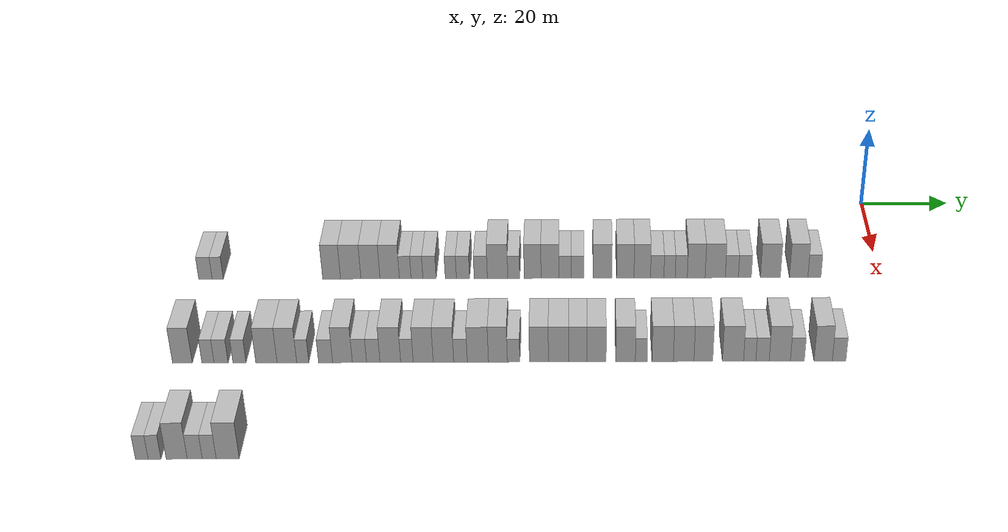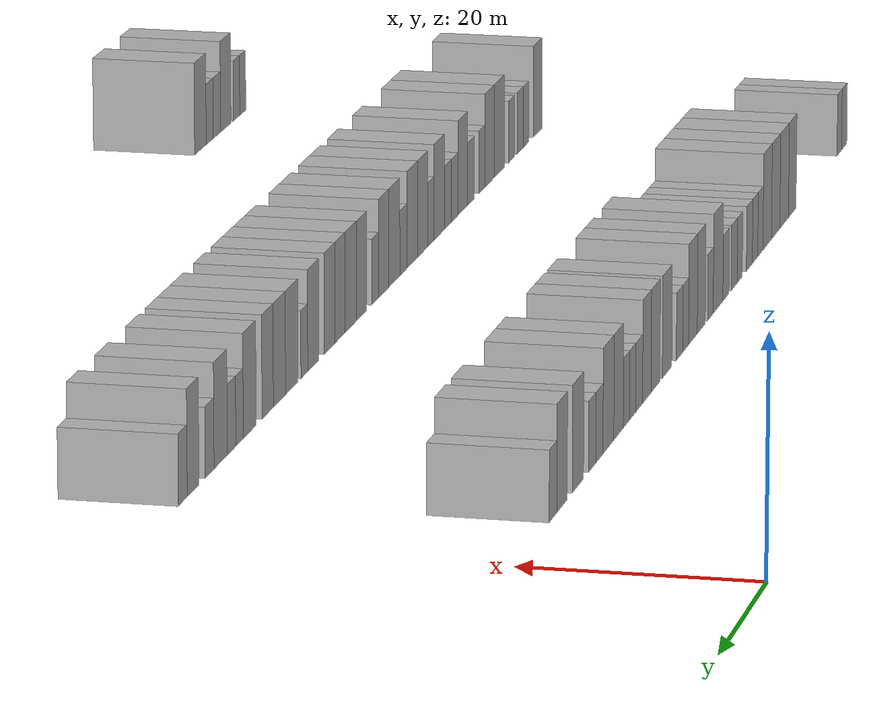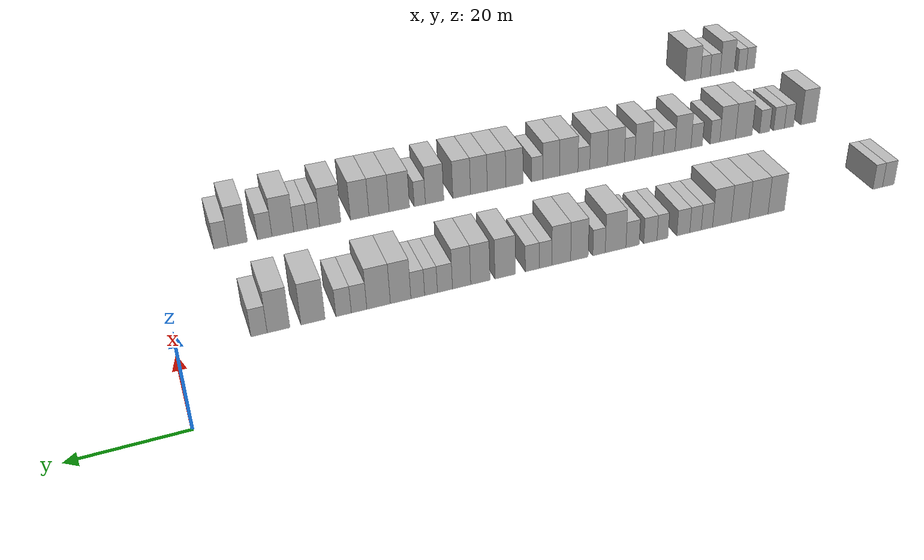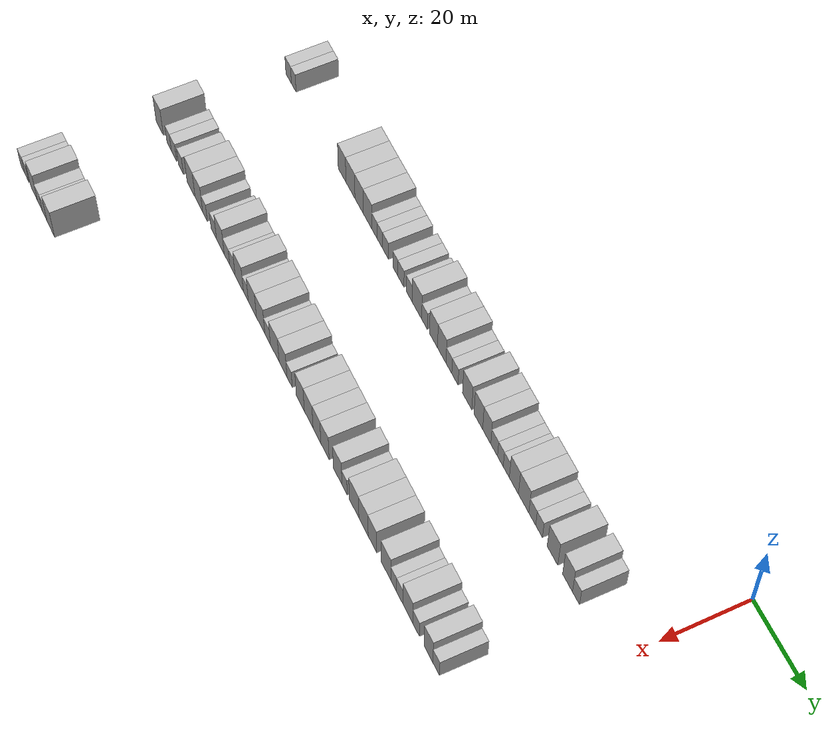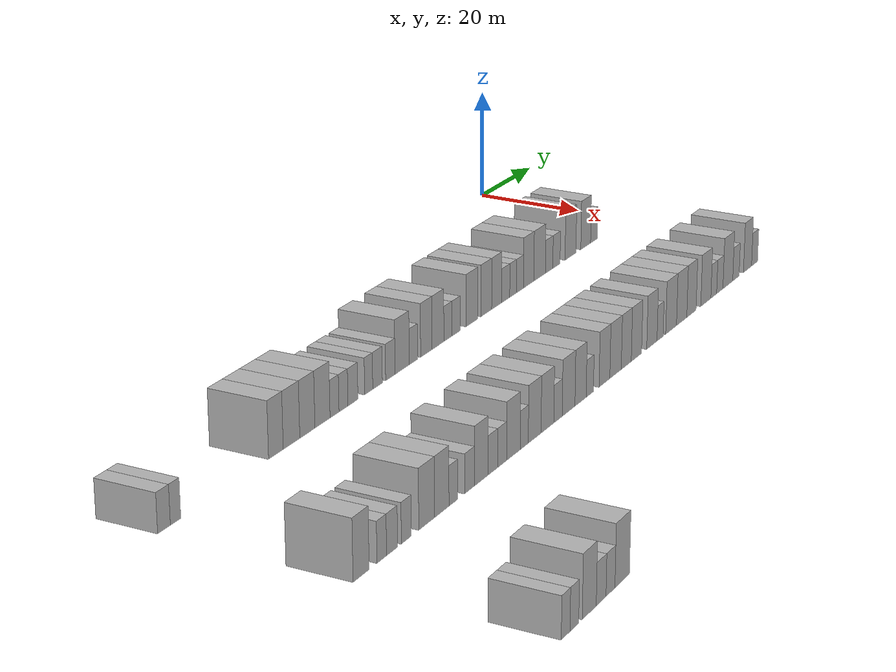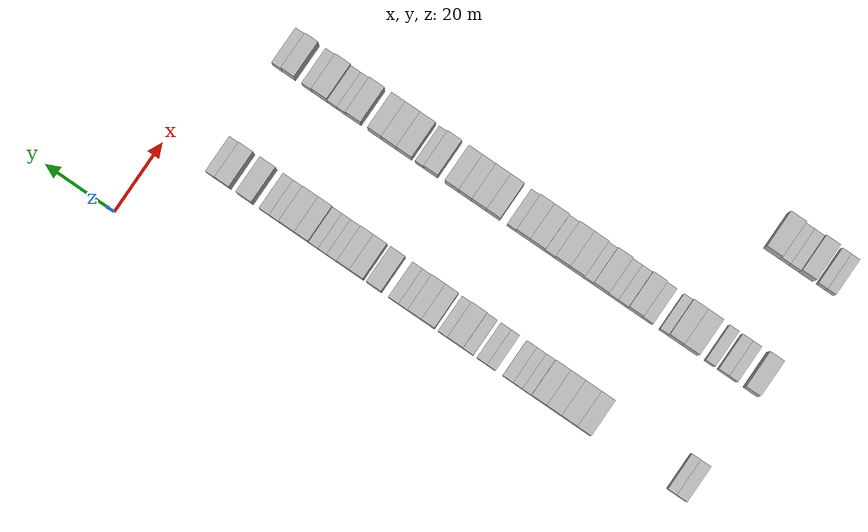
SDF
<sdf version="1.6">
 <world name="default">
  <model name="building_72">
   <static>1</static>
   <pose>25.0000 -148.7566 0 0.000000 0.000000 0.000000</pose>
   <link name="link">
    <pose>0 0 3.00 0 0 0</pose>
    <collision name="collision"><geometry><box><size>10.0000 2.9561 6.0000</size></box></geometry></collision>
    <visual name="visual">
     <cast_shadows>0</cast_shadows>
     <geometry><box><size>10.0000 2.9561 6.0000</size></box></geometry>
     <material>
      <script>
       <uri>model://HANNAS_wall/materials/scripts</uri>
       <uri>model://HANNAS_wall/materials/textures</uri>
       <name>vrc/HANNAS_wall</name>
      </script>
     </material>
    </visual>
   </link>
  </model>
  <model name="building_73">
   <static>1</static>
   <pose>25.0000 -146.0488 0 0.000000 0.000000 0.000000</pose>
   <link name="link">
    <pose>0 0 3.00 0 0 0</pose>
    <collision name="collision"><geometry><box><size>10.0000 2.4596 6.0000</size></box></geometry></collision>
    <visual name="visual">
     <cast_shadows>0</cast_shadows>
     <geometry><box><size>10.0000 2.4596 6.0000</size></box></geometry>
     <material>
      <script>
       <uri>model://HANNAS_wall/materials/scripts</uri>
       <uri>model://HANNAS_wall/materials/textures</uri>
       <name>vrc/HANNAS_wall</name>
      </script>
     </material>
    </visual>
   </link>
  </model>
  <model name="building_74">
   <static>1</static>
   <pose>25.0000 -120.9493 0 0.000000 0.000000 0.000000</pose>
   <link name="link">
    <pose>0 0 4.50 0 0 0</pose>
    <collision name="collision"><geometry><box><size>10.0000 3.9131 9.0000</size></box></geometry></collision>
    <visual name="visual">
     <cast_shadows>0</cast_shadows>
     <geometry><box><size>10.0000 3.9131 9.0000</size></box></geometry>
     <material>
      <script>
       <uri>model://HANNAS_wall/materials/scripts</uri>
       <uri>model://HANNAS_wall/materials/textures</uri>
       <name>vrc/HANNAS_wall</name>
      </script>
     </material>
    </visual>
   </link>
  </model>
  <model name="building_75">
   <static>1</static>
   <pose>25.0000 -116.7447 0 0.000000 0.000000 0.000000</pose>
   <link name="link">
    <pose>0 0 4.50 0 0 0</pose>
    <collision name="collision"><geometry><box><size>10.0000 4.4961 9.0000</size></box></geometry></collision>
    <visual name="visual">
     <cast_shadows>0</cast_shadows>
     <geometry><box><size>10.0000 4.4961 9.0000</size></box></geometry>
     <material>
      <script>
       <uri>model://HANNAS_wall/materials/scripts</uri>
       <uri>model://HANNAS_wall/materials/textures</uri>
       <name>vrc/HANNAS_wall</name>
      </script>
     </material>
    </visual>
   </link>
  </model>
  <model name="building_76">
   <static>1</static>
   <pose>25.0000 -112.3964 0 0.000000 0.000000 0.000000</pose>
   <link name="link">
    <pose>0 0 4.50 0 0 0</pose>
    <collision name="collision"><geometry><box><size>10.0000 4.2004 9.0000</size></box></geometry></collision>
    <visual name="visual">
     <cast_shadows>0</cast_shadows>
     <geometry><box><size>10.0000 4.2004 9.0000</size></box></geometry>
     <material>
      <script>
       <uri>model://HANNAS_wall/materials/scripts</uri>
       <uri>model://HANNAS_wall/materials/textures</uri>
       <name>vrc/HANNAS_wall</name>
      </script>
     </material>
    </visual>
   </link>
  </model>
  <model name="building_77">
   <static>1</static>
   <pose>25.0000 -108.1592 0 0.000000 0.000000 0.000000</pose>
   <link name="link">
    <pose>0 0 4.50 0 0 0</pose>
    <collision name="collision"><geometry><box><size>10.0000 4.2739 9.0000</size></box></geometry></collision>
    <visual name="visual">
     <cast_shadows>0</cast_shadows>
     <geometry><box><size>10.0000 4.2739 9.0000</size></box></geometry>
     <material>
      <script>
       <uri>model://HANNAS_wall/materials/scripts</uri>
       <uri>model://HANNAS_wall/materials/textures</uri>
       <name>vrc/HANNAS_wall</name>
      </script>
     </material>
    </visual>
   </link>
  </model>
  <model name="building_78">
   <static>1</static>
   <pose>25.0000 -104.7323 0 0.000000 0.000000 0.000000</pose>
   <link name="link">
    <pose>0 0 3.00 0 0 0</pose>
    <collision name="collision"><geometry><box><size>10.0000 2.5799 6.0000</size></box></geometry></collision>
    <visual name="visual">
     <cast_shadows>0</cast_shadows>
     <geometry><box><size>10.0000 2.5799 6.0000</size></box></geometry>
     <material>
      <script>
       <uri>model://HANNAS_wall/materials/scripts</uri>
       <uri>model://HANNAS_wall/materials/textures</uri>
       <name>vrc/HANNAS_wall</name>
      </script>
     </material>
    </visual>
   </link>
  </model>
  <model name="building_79">
   <static>1</static>
   <pose>25.0000 -102.1367 0 0.000000 0.000000 0.000000</pose>
   <link name="link">
    <pose>0 0 3.00 0 0 0</pose>
    <collision name="collision"><geometry><box><size>10.0000 2.6113 6.0000</size></box></geometry></collision>
    <visual name="visual">
     <cast_shadows>0</cast_shadows>
     <geometry><box><size>10.0000 2.6113 6.0000</size></box></geometry>
     <material>
      <script>
       <uri>model://HANNAS_wall/materials/scripts</uri>
       <uri>model://HANNAS_wall/materials/textures</uri>
       <name>vrc/HANNAS_wall</name>
      </script>
     </material>
    </visual>
   </link>
  </model>
  <model name="building_80">
   <static>1</static>
   <pose>25.0000 -99.3626 0 0.000000 0.000000 0.000000</pose>
   <link name="link">
    <pose>0 0 3.00 0 0 0</pose>
    <collision name="collision"><geometry><box><size>10.0000 2.9368 6.0000</size></box></geometry></collision>
    <visual name="visual">
     <cast_shadows>0</cast_shadows>
     <geometry><box><size>10.0000 2.9368 6.0000</size></box></geometry>
     <material>
      <script>
       <uri>model://HANNAS_wall/materials/scripts</uri>
       <uri>model://HANNAS_wall/materials/textures</uri>
       <name>vrc/HANNAS_wall</name>
      </script>
     </material>
    </visual>
   </link>
  </model>
  <model name="building_81">
   <static>1</static>
   <pose>25.0000 -94.6724 0 0.000000 0.000000 0.000000</pose>
   <link name="link">
    <pose>0 0 3.00 0 0 0</pose>
    <collision name="collision"><geometry><box><size>10.0000 2.4437 6.0000</size></box></geometry></collision>
    <visual name="visual">
     <cast_shadows>0</cast_shadows>
     <geometry><box><size>10.0000 2.4437 6.0000</size></box></geometry>
     <material>
      <script>
       <uri>model://HANNAS_wall/materials/scripts</uri>
       <uri>model://HANNAS_wall/materials/textures</uri>
       <name>vrc/HANNAS_wall</name>
      </script>
     </material>
    </visual>
   </link>
  </model>
  <model name="building_82">
   <static>1</static>
   <pose>25.0000 -91.9848 0 0.000000 0.000000 0.000000</pose>
   <link name="link">
    <pose>0 0 3.00 0 0 0</pose>
    <collision name="collision"><geometry><box><size>10.0000 2.9315 6.0000</size></box></geometry></collision>
    <visual name="visual">
     <cast_shadows>0</cast_shadows>
     <geometry><box><size>10.0000 2.9315 6.0000</size></box></geometry>
     <material>
      <script>
       <uri>model://HANNAS_wall/materials/scripts</uri>
       <uri>model://HANNAS_wall/materials/textures</uri>
       <name>vrc/HANNAS_wall</name>
      </script>
     </material>
    </visual>
   </link>
  </model>
  <model name="building_83">
   <static>1</static>
   <pose>25.0000 -88.0615 0 0.000000 0.000000 0.000000</pose>
   <link name="link">
    <pose>0 0 3.00 0 0 0</pose>
    <collision name="collision"><geometry><box><size>10.0000 2.9152 6.0000</size></box></geometry></collision>
    <visual name="visual">
     <cast_shadows>0</cast_shadows>
     <geometry><box><size>10.0000 2.9152 6.0000</size></box></geometry>
     <material>
      <script>
       <uri>model://HANNAS_wall/materials/scripts</uri>
       <uri>model://HANNAS_wall/materials/textures</uri>
       <name>vrc/HANNAS_wall</name>
      </script>
     </material>
    </visual>
   </link>
  </model>
  <model name="building_84">
   <static>1</static>
   <pose>25.0000 -84.3552 0 0.000000 0.000000 0.000000</pose>
   <link name="link">
    <pose>0 0 4.50 0 0 0</pose>
    <collision name="collision"><geometry><box><size>10.0000 4.4973 9.0000</size></box></geometry></collision>
    <visual name="visual">
     <cast_shadows>0</cast_shadows>
     <geometry><box><size>10.0000 4.4973 9.0000</size></box></geometry>
     <material>
      <script>
       <uri>model://HANNAS_wall/materials/scripts</uri>
       <uri>model://HANNAS_wall/materials/textures</uri>
       <name>vrc/HANNAS_wall</name>
      </script>
     </material>
    </visual>
   </link>
  </model>
  <model name="building_85">
   <static>1</static>
   <pose>25.0000 -80.7821 0 0.000000 0.000000 0.000000</pose>
   <link name="link">
    <pose>0 0 3.00 0 0 0</pose>
    <collision name="collision"><geometry><box><size>10.0000 2.6490 6.0000</size></box></geometry></collision>
    <visual name="visual">
     <cast_shadows>0</cast_shadows>
     <geometry><box><size>10.0000 2.6490 6.0000</size></box></geometry>
     <material>
      <script>
       <uri>model://HANNAS_wall/materials/scripts</uri>
       <uri>model://HANNAS_wall/materials/textures</uri>
       <name>vrc/HANNAS_wall</name>
      </script>
     </material>
    </visual>
   </link>
  </model>
  <model name="building_86">
   <static>1</static>
   <pose>25.0000 -76.5953 0 0.000000 0.000000 0.000000</pose>
   <link name="link">
    <pose>0 0 4.50 0 0 0</pose>
    <collision name="collision"><geometry><box><size>10.0000 3.7245 9.0000</size></box></geometry></collision>
    <visual name="visual">
     <cast_shadows>0</cast_shadows>
     <geometry><box><size>10.0000 3.7245 9.0000</size></box></geometry>
     <material>
      <script>
       <uri>model://HANNAS_wall/materials/scripts</uri>
       <uri>model://HANNAS_wall/materials/textures</uri>
       <name>vrc/HANNAS_wall</name>
      </script>
     </material>
    </visual>
   </link>
  </model>
  <model name="building_87">
   <static>1</static>
   <pose>25.0000 -72.7636 0 0.000000 0.000000 0.000000</pose>
   <link name="link">
    <pose>0 0 4.50 0 0 0</pose>
    <collision name="collision"><geometry><box><size>10.0000 3.9390 9.0000</size></box></geometry></collision>
    <visual name="visual">
     <cast_shadows>0</cast_shadows>
     <geometry><box><size>10.0000 3.9390 9.0000</size></box></geometry>
     <material>
      <script>
       <uri>model://HANNAS_wall/materials/scripts</uri>
       <uri>model://HANNAS_wall/materials/textures</uri>
       <name>vrc/HANNAS_wall</name>
      </script>
     </material>
    </visual>
   </link>
  </model>
  <model name="building_88">
   <static>1</static>
   <pose>25.0000 -69.4672 0 0.000000 0.000000 0.000000</pose>
   <link name="link">
    <pose>0 0 3.00 0 0 0</pose>
    <collision name="collision"><geometry><box><size>10.0000 2.6539 6.0000</size></box></geometry></collision>
    <visual name="visual">
     <cast_shadows>0</cast_shadows>
     <geometry><box><size>10.0000 2.6539 6.0000</size></box></geometry>
     <material>
      <script>
       <uri>model://HANNAS_wall/materials/scripts</uri>
       <uri>model://HANNAS_wall/materials/textures</uri>
       <name>vrc/HANNAS_wall</name>
      </script>
     </material>
    </visual>
   </link>
  </model>
  <model name="building_89">
   <static>1</static>
   <pose>25.0000 -66.7081 0 0.000000 0.000000 0.000000</pose>
   <link name="link">
    <pose>0 0 3.00 0 0 0</pose>
    <collision name="collision"><geometry><box><size>10.0000 2.8642 6.0000</size></box></geometry></collision>
    <visual name="visual">
     <cast_shadows>0</cast_shadows>
     <geometry><box><size>10.0000 2.8642 6.0000</size></box></geometry>
     <material>
      <script>
       <uri>model://HANNAS_wall/materials/scripts</uri>
       <uri>model://HANNAS_wall/materials/textures</uri>
       <name>vrc/HANNAS_wall</name>
      </script>
     </material>
    </visual>
   </link>
  </model>
  <model name="building_90">
   <static>1</static>
   <pose>25.0000 -61.1816 0 0.000000 0.000000 0.000000</pose>
   <link name="link">
    <pose>0 0 4.50 0 0 0</pose>
    <collision name="collision"><geometry><box><size>10.0000 4.1888 9.0000</size></box></geometry></collision>
    <visual name="visual">
     <cast_shadows>0</cast_shadows>
     <geometry><box><size>10.0000 4.1888 9.0000</size></box></geometry>
     <material>
      <script>
       <uri>model://HANNAS_wall/materials/scripts</uri>
       <uri>model://HANNAS_wall/materials/textures</uri>
       <name>vrc/HANNAS_wall</name>
      </script>
     </material>
    </visual>
   </link>
  </model>
  <model name="building_91">
   <static>1</static>
   <pose>25.0000 -56.1573 0 0.000000 0.000000 0.000000</pose>
   <link name="link">
    <pose>0 0 4.50 0 0 0</pose>
    <collision name="collision"><geometry><box><size>10.0000 3.8599 9.0000</size></box></geometry></collision>
    <visual name="visual">
     <cast_shadows>0</cast_shadows>
     <geometry><box><size>10.0000 3.8599 9.0000</size></box></geometry>
     <material>
      <script>
       <uri>model://HANNAS_wall/materials/scripts</uri>
       <uri>model://HANNAS_wall/materials/textures</uri>
       <name>vrc/HANNAS_wall</name>
      </script>
     </material>
    </visual>
   </link>
  </model>
  <model name="building_92">
   <static>1</static>
   <pose>25.0000 -52.4123 0 0.000000 0.000000 0.000000</pose>
   <link name="link">
    <pose>0 0 4.50 0 0 0</pose>
    <collision name="collision"><geometry><box><size>10.0000 3.6300 9.0000</size></box></geometry></collision>
    <visual name="visual">
     <cast_shadows>0</cast_shadows>
     <geometry><box><size>10.0000 3.6300 9.0000</size></box></geometry>
     <material>
      <script>
       <uri>model://HANNAS_wall/materials/scripts</uri>
       <uri>model://HANNAS_wall/materials/textures</uri>
       <name>vrc/HANNAS_wall</name>
      </script>
     </material>
    </visual>
   </link>
  </model>
  <model name="building_93">
   <static>1</static>
   <pose>25.0000 -49.1199 0 0.000000 0.000000 0.000000</pose>
   <link name="link">
    <pose>0 0 3.00 0 0 0</pose>
    <collision name="collision"><geometry><box><size>10.0000 2.9548 6.0000</size></box></geometry></collision>
    <visual name="visual">
     <cast_shadows>0</cast_shadows>
     <geometry><box><size>10.0000 2.9548 6.0000</size></box></geometry>
     <material>
      <script>
       <uri>model://HANNAS_wall/materials/scripts</uri>
       <uri>model://HANNAS_wall/materials/textures</uri>
       <name>vrc/HANNAS_wall</name>
      </script>
     </material>
    </visual>
   </link>
  </model>
  <model name="building_94">
   <static>1</static>
   <pose>25.0000 -46.3922 0 0.000000 0.000000 0.000000</pose>
   <link name="link">
    <pose>0 0 3.00 0 0 0</pose>
    <collision name="collision"><geometry><box><size>10.0000 2.5007 6.0000</size></box></geometry></collision>
    <visual name="visual">
     <cast_shadows>0</cast_shadows>
     <geometry><box><size>10.0000 2.5007 6.0000</size></box></geometry>
     <material>
      <script>
       <uri>model://HANNAS_wall/materials/scripts</uri>
       <uri>model://HANNAS_wall/materials/textures</uri>
       <name>vrc/HANNAS_wall</name>
      </script>
     </material>
    </visual>
   </link>
  </model>
  <model name="building_95">
   <static>1</static>
   <pose>25.0000 -43.8099 0 0.000000 0.000000 0.000000</pose>
   <link name="link">
    <pose>0 0 3.00 0 0 0</pose>
    <collision name="collision"><geometry><box><size>10.0000 2.6638 6.0000</size></box></geometry></collision>
    <visual name="visual">
     <cast_shadows>0</cast_shadows>
     <geometry><box><size>10.0000 2.6638 6.0000</size></box></geometry>
     <material>
      <script>
       <uri>model://HANNAS_wall/materials/scripts</uri>
       <uri>model://HANNAS_wall/materials/textures</uri>
       <name>vrc/HANNAS_wall</name>
      </script>
     </material>
    </visual>
   </link>
  </model>
  <model name="building_96">
   <static>1</static>
   <pose>25.0000 -40.5106 0 0.000000 0.000000 0.000000</pose>
   <link name="link">
    <pose>0 0 4.50 0 0 0</pose>
    <collision name="collision"><geometry><box><size>10.0000 3.9348 9.0000</size></box></geometry></collision>
    <visual name="visual">
     <cast_shadows>0</cast_shadows>
     <geometry><box><size>10.0000 3.9348 9.0000</size></box></geometry>
     <material>
      <script>
       <uri>model://HANNAS_wall/materials/scripts</uri>
       <uri>model://HANNAS_wall/materials/textures</uri>
       <name>vrc/HANNAS_wall</name>
      </script>
     </material>
    </visual>
   </link>
  </model>
  <model name="building_97">
   <static>1</static>
   <pose>25.0000 -36.3132 0 0.000000 0.000000 0.000000</pose>
   <link name="link">
    <pose>0 0 4.50 0 0 0</pose>
    <collision name="collision"><geometry><box><size>10.0000 4.4601 9.0000</size></box></geometry></collision>
    <visual name="visual">
     <cast_shadows>0</cast_shadows>
     <geometry><box><size>10.0000 4.4601 9.0000</size></box></geometry>
     <material>
      <script>
       <uri>model://HANNAS_wall/materials/scripts</uri>
       <uri>model://HANNAS_wall/materials/textures</uri>
       <name>vrc/HANNAS_wall</name>
      </script>
     </material>
    </visual>
   </link>
  </model>
  <model name="building_98">
   <static>1</static>
   <pose>25.0000 -32.6326 0 0.000000 0.000000 0.000000</pose>
   <link name="link">
    <pose>0 0 3.00 0 0 0</pose>
    <collision name="collision"><geometry><box><size>10.0000 2.9010 6.0000</size></box></geometry></collision>
    <visual name="visual">
     <cast_shadows>0</cast_shadows>
     <geometry><box><size>10.0000 2.9010 6.0000</size></box></geometry>
     <material>
      <script>
       <uri>model://HANNAS_wall/materials/scripts</uri>
       <uri>model://HANNAS_wall/materials/textures</uri>
       <name>vrc/HANNAS_wall</name>
      </script>
     </material>
    </visual>
   </link>
  </model>
  <model name="building_99">
   <static>1</static>
   <pose>25.0000 -29.7477 0 0.000000 0.000000 0.000000</pose>
   <link name="link">
    <pose>0 0 3.00 0 0 0</pose>
    <collision name="collision"><geometry><box><size>10.0000 2.8688 6.0000</size></box></geometry></collision>
    <visual name="visual">
     <cast_shadows>0</cast_shadows>
     <geometry><box><size>10.0000 2.8688 6.0000</size></box></geometry>
     <material>
      <script>
       <uri>model://HANNAS_wall/materials/scripts</uri>
       <uri>model://HANNAS_wall/materials/textures</uri>
       <name>vrc/HANNAS_wall</name>
      </script>
     </material>
    </visual>
   </link>
  </model>
  <model name="building_100">
   <static>1</static>
   <pose>25.0000 -24.1033 0 0.000000 0.000000 0.000000</pose>
   <link name="link">
    <pose>0 0 4.50 0 0 0</pose>
    <collision name="collision"><geometry><box><size>10.0000 4.4200 9.0000</size></box></geometry></collision>
    <visual name="visual">
     <cast_shadows>0</cast_shadows>
     <geometry><box><size>10.0000 4.4200 9.0000</size></box></geometry>
     <material>
      <script>
       <uri>model://HANNAS_wall/materials/scripts</uri>
       <uri>model://HANNAS_wall/materials/textures</uri>
       <name>vrc/HANNAS_wall</name>
      </script>
     </material>
    </visual>
   </link>
  </model>
  <model name="building_101">
   <static>1</static>
   <pose>25.0000 -17.8589 0 0.000000 0.000000 0.000000</pose>
   <link name="link">
    <pose>0 0 4.50 0 0 0</pose>
    <collision name="collision"><geometry><box><size>10.0000 4.0689 9.0000</size></box></geometry></collision>
    <visual name="visual">
     <cast_shadows>0</cast_shadows>
     <geometry><box><size>10.0000 4.0689 9.0000</size></box></geometry>
     <material>
      <script>
       <uri>model://HANNAS_wall/materials/scripts</uri>
       <uri>model://HANNAS_wall/materials/textures</uri>
       <name>vrc/HANNAS_wall</name>
      </script>
     </material>
    </visual>
   </link>
  </model>
  <model name="building_102">
   <static>1</static>
   <pose>25.0000 -14.3806 0 0.000000 0.000000 0.000000</pose>
   <link name="link">
    <pose>0 0 3.00 0 0 0</pose>
    <collision name="collision"><geometry><box><size>10.0000 2.8877 6.0000</size></box></geometry></collision>
    <visual name="visual">
     <cast_shadows>0</cast_shadows>
     <geometry><box><size>10.0000 2.8877 6.0000</size></box></geometry>
     <material>
      <script>
       <uri>model://HANNAS_wall/materials/scripts</uri>
       <uri>model://HANNAS_wall/materials/textures</uri>
       <name>vrc/HANNAS_wall</name>
      </script>
     </material>
    </visual>
   </link>
  </model>
  <model name="building_306">
   <static>1</static>
   <pose>55.0000 -148.2783 0 0.000000 0.000000 0.000000</pose>
   <link name="link">
    <pose>0 0 4.50 0 0 0</pose>
    <collision name="collision"><geometry><box><size>10.0000 4.0579 9.0000</size></box></geometry></collision>
    <visual name="visual">
     <cast_shadows>0</cast_shadows>
     <geometry><box><size>10.0000 4.0579 9.0000</size></box></geometry>
     <material>
      <script>
       <uri>model://HANNAS_wall/materials/scripts</uri>
       <uri>model://HANNAS_wall/materials/textures</uri>
       <name>vrc/HANNAS_wall</name>
      </script>
     </material>
    </visual>
   </link>
  </model>
  <model name="building_307">
   <static>1</static>
   <pose>55.0000 -143.0021 0 0.000000 0.000000 0.000000</pose>
   <link name="link">
    <pose>0 0 3.00 0 0 0</pose>
    <collision name="collision"><geometry><box><size>10.0000 2.4945 6.0000</size></box></geometry></collision>
    <visual name="visual">
     <cast_shadows>0</cast_shadows>
     <geometry><box><size>10.0000 2.4945 6.0000</size></box></geometry>
     <material>
      <script>
       <uri>model://HANNAS_wall/materials/scripts</uri>
       <uri>model://HANNAS_wall/materials/textures</uri>
       <name>vrc/HANNAS_wall</name>
      </script>
     </material>
    </visual>
   </link>
  </model>
  <model name="building_308">
   <static>1</static>
   <pose>55.0000 -140.3025 0 0.000000 0.000000 0.000000</pose>
   <link name="link">
    <pose>0 0 3.00 0 0 0</pose>
    <collision name="collision"><geometry><box><size>10.0000 2.9047 6.0000</size></box></geometry></collision>
    <visual name="visual">
     <cast_shadows>0</cast_shadows>
     <geometry><box><size>10.0000 2.9047 6.0000</size></box></geometry>
     <material>
      <script>
       <uri>model://HANNAS_wall/materials/scripts</uri>
       <uri>model://HANNAS_wall/materials/textures</uri>
       <name>vrc/HANNAS_wall</name>
      </script>
     </material>
    </visual>
   </link>
  </model>
  <model name="building_309">
   <static>1</static>
   <pose>55.0000 -136.4966 0 0.000000 0.000000 0.000000</pose>
   <link name="link">
    <pose>0 0 3.00 0 0 0</pose>
    <collision name="collision"><geometry><box><size>10.0000 2.7070 6.0000</size></box></geometry></collision>
    <visual name="visual">
     <cast_shadows>0</cast_shadows>
     <geometry><box><size>10.0000 2.7070 6.0000</size></box></geometry>
     <material>
      <script>
       <uri>model://HANNAS_wall/materials/scripts</uri>
       <uri>model://HANNAS_wall/materials/textures</uri>
       <name>vrc/HANNAS_wall</name>
      </script>
     </material>
    </visual>
   </link>
  </model>
  <model name="building_310">
   <static>1</static>
   <pose>55.0000 -130.9513 0 0.000000 0.000000 0.000000</pose>
   <link name="link">
    <pose>0 0 4.50 0 0 0</pose>
    <collision name="collision"><geometry><box><size>10.0000 4.3837 9.0000</size></box></geometry></collision>
    <visual name="visual">
     <cast_shadows>0</cast_shadows>
     <geometry><box><size>10.0000 4.3837 9.0000</size></box></geometry>
     <material>
      <script>
       <uri>model://HANNAS_wall/materials/scripts</uri>
       <uri>model://HANNAS_wall/materials/textures</uri>
       <name>vrc/HANNAS_wall</name>
      </script>
     </material>
    </visual>
   </link>
  </model>
  <model name="building_311">
   <static>1</static>
   <pose>55.0000 -126.7279 0 0.000000 0.000000 0.000000</pose>
   <link name="link">
    <pose>0 0 4.50 0 0 0</pose>
    <collision name="collision"><geometry><box><size>10.0000 4.0631 9.0000</size></box></geometry></collision>
    <visual name="visual">
     <cast_shadows>0</cast_shadows>
     <geometry><box><size>10.0000 4.0631 9.0000</size></box></geometry>
     <material>
      <script>
       <uri>model://HANNAS_wall/materials/scripts</uri>
       <uri>model://HANNAS_wall/materials/textures</uri>
       <name>vrc/HANNAS_wall</name>
      </script>
     </material>
    </visual>
   </link>
  </model>
  <model name="building_312">
   <static>1</static>
   <pose>55.0000 -123.4439 0 0.000000 0.000000 0.000000</pose>
   <link name="link">
    <pose>0 0 3.00 0 0 0</pose>
    <collision name="collision"><geometry><box><size>10.0000 2.5049 6.0000</size></box></geometry></collision>
    <visual name="visual">
     <cast_shadows>0</cast_shadows>
     <geometry><box><size>10.0000 2.5049 6.0000</size></box></geometry>
     <material>
      <script>
       <uri>model://HANNAS_wall/materials/scripts</uri>
       <uri>model://HANNAS_wall/materials/textures</uri>
       <name>vrc/HANNAS_wall</name>
      </script>
     </material>
    </visual>
   </link>
  </model>
  <model name="building_313">
   <static>1</static>
   <pose>55.0000 -118.7361 0 0.000000 0.000000 0.000000</pose>
   <link name="link">
    <pose>0 0 3.00 0 0 0</pose>
    <collision name="collision"><geometry><box><size>10.0000 2.9108 6.0000</size></box></geometry></collision>
    <visual name="visual">
     <cast_shadows>0</cast_shadows>
     <geometry><box><size>10.0000 2.9108 6.0000</size></box></geometry>
     <material>
      <script>
       <uri>model://HANNAS_wall/materials/scripts</uri>
       <uri>model://HANNAS_wall/materials/textures</uri>
       <name>vrc/HANNAS_wall</name>
      </script>
     </material>
    </visual>
   </link>
  </model>
  <model name="building_314">
   <static>1</static>
   <pose>55.0000 -115.2492 0 0.000000 0.000000 0.000000</pose>
   <link name="link">
    <pose>0 0 4.50 0 0 0</pose>
    <collision name="collision"><geometry><box><size>10.0000 4.0630 9.0000</size></box></geometry></collision>
    <visual name="visual">
     <cast_shadows>0</cast_shadows>
     <geometry><box><size>10.0000 4.0630 9.0000</size></box></geometry>
     <material>
      <script>
       <uri>model://HANNAS_wall/materials/scripts</uri>
       <uri>model://HANNAS_wall/materials/textures</uri>
       <name>vrc/HANNAS_wall</name>
      </script>
     </material>
    </visual>
   </link>
  </model>
  <model name="building_315">
   <static>1</static>
   <pose>55.0000 -111.7540 0 0.000000 0.000000 0.000000</pose>
   <link name="link">
    <pose>0 0 3.00 0 0 0</pose>
    <collision name="collision"><geometry><box><size>10.0000 2.9272 6.0000</size></box></geometry></collision>
    <visual name="visual">
     <cast_shadows>0</cast_shadows>
     <geometry><box><size>10.0000 2.9272 6.0000</size></box></geometry>
     <material>
      <script>
       <uri>model://HANNAS_wall/materials/scripts</uri>
       <uri>model://HANNAS_wall/materials/textures</uri>
       <name>vrc/HANNAS_wall</name>
      </script>
     </material>
    </visual>
   </link>
  </model>
  <model name="building_316">
   <static>1</static>
   <pose>55.0000 -108.9055 0 0.000000 0.000000 0.000000</pose>
   <link name="link">
    <pose>0 0 3.00 0 0 0</pose>
    <collision name="collision"><geometry><box><size>10.0000 2.7699 6.0000</size></box></geometry></collision>
    <visual name="visual">
     <cast_shadows>0</cast_shadows>
     <geometry><box><size>10.0000 2.7699 6.0000</size></box></geometry>
     <material>
      <script>
       <uri>model://HANNAS_wall/materials/scripts</uri>
       <uri>model://HANNAS_wall/materials/textures</uri>
       <name>vrc/HANNAS_wall</name>
      </script>
     </material>
    </visual>
   </link>
  </model>
  <model name="building_317">
   <static>1</static>
   <pose>55.0000 -105.3788 0 0.000000 0.000000 0.000000</pose>
   <link name="link">
    <pose>0 0 4.50 0 0 0</pose>
    <collision name="collision"><geometry><box><size>10.0000 4.2834 9.0000</size></box></geometry></collision>
    <visual name="visual">
     <cast_shadows>0</cast_shadows>
     <geometry><box><size>10.0000 4.2834 9.0000</size></box></geometry>
     <material>
      <script>
       <uri>model://HANNAS_wall/materials/scripts</uri>
       <uri>model://HANNAS_wall/materials/textures</uri>
       <name>vrc/HANNAS_wall</name>
      </script>
     </material>
    </visual>
   </link>
  </model>
  <model name="building_318">
   <static>1</static>
   <pose>55.0000 -101.9514 0 0.000000 0.000000 0.000000</pose>
   <link name="link">
    <pose>0 0 3.00 0 0 0</pose>
    <collision name="collision"><geometry><box><size>10.0000 2.5715 6.0000</size></box></geometry></collision>
    <visual name="visual">
     <cast_shadows>0</cast_shadows>
     <geometry><box><size>10.0000 2.5715 6.0000</size></box></geometry>
     <material>
      <script>
       <uri>model://HANNAS_wall/materials/scripts</uri>
       <uri>model://HANNAS_wall/materials/textures</uri>
       <name>vrc/HANNAS_wall</name>
      </script>
     </material>
    </visual>
   </link>
  </model>
  <model name="building_319">
   <static>1</static>
   <pose>55.0000 -98.5926 0 0.000000 0.000000 0.000000</pose>
   <link name="link">
    <pose>0 0 4.50 0 0 0</pose>
    <collision name="collision"><geometry><box><size>10.0000 4.1461 9.0000</size></box></geometry></collision>
    <visual name="visual">
     <cast_shadows>0</cast_shadows>
     <geometry><box><size>10.0000 4.1461 9.0000</size></box></geometry>
     <material>
      <script>
       <uri>model://HANNAS_wall/materials/scripts</uri>
       <uri>model://HANNAS_wall/materials/textures</uri>
       <name>vrc/HANNAS_wall</name>
      </script>
     </material>
    </visual>
   </link>
  </model>
  <model name="building_320">
   <static>1</static>
   <pose>55.0000 -94.4037 0 0.000000 0.000000 0.000000</pose>
   <link name="link">
    <pose>0 0 4.50 0 0 0</pose>
    <collision name="collision"><geometry><box><size>10.0000 4.2317 9.0000</size></box></geometry></collision>
    <visual name="visual">
     <cast_shadows>0</cast_shadows>
     <geometry><box><size>10.0000 4.2317 9.0000</size></box></geometry>
     <material>
      <script>
       <uri>model://HANNAS_wall/materials/scripts</uri>
       <uri>model://HANNAS_wall/materials/textures</uri>
       <name>vrc/HANNAS_wall</name>
      </script>
     </material>
    </visual>
   </link>
  </model>
  <model name="building_321">
   <static>1</static>
   <pose>55.0000 -90.8838 0 0.000000 0.000000 0.000000</pose>
   <link name="link">
    <pose>0 0 3.00 0 0 0</pose>
    <collision name="collision"><geometry><box><size>10.0000 2.8081 6.0000</size></box></geometry></collision>
    <visual name="visual">
     <cast_shadows>0</cast_shadows>
     <geometry><box><size>10.0000 2.8081 6.0000</size></box></geometry>
     <material>
      <script>
       <uri>model://HANNAS_wall/materials/scripts</uri>
       <uri>model://HANNAS_wall/materials/textures</uri>
       <name>vrc/HANNAS_wall</name>
      </script>
     </material>
    </visual>
   </link>
  </model>
  <model name="building_322">
   <static>1</static>
   <pose>55.0000 -87.2943 0 0.000000 0.000000 0.000000</pose>
   <link name="link">
    <pose>0 0 4.50 0 0 0</pose>
    <collision name="collision"><geometry><box><size>10.0000 4.3708 9.0000</size></box></geometry></collision>
    <visual name="visual">
     <cast_shadows>0</cast_shadows>
     <geometry><box><size>10.0000 4.3708 9.0000</size></box></geometry>
     <material>
      <script>
       <uri>model://HANNAS_wall/materials/scripts</uri>
       <uri>model://HANNAS_wall/materials/textures</uri>
       <name>vrc/HANNAS_wall</name>
      </script>
     </material>
    </visual>
   </link>
  </model>
  <model name="building_323">
   <static>1</static>
   <pose>55.0000 -83.1514 0 0.000000 0.000000 0.000000</pose>
   <link name="link">
    <pose>0 0 4.50 0 0 0</pose>
    <collision name="collision"><geometry><box><size>10.0000 3.9150 9.0000</size></box></geometry></collision>
    <visual name="visual">
     <cast_shadows>0</cast_shadows>
     <geometry><box><size>10.0000 3.9150 9.0000</size></box></geometry>
     <material>
      <script>
       <uri>model://HANNAS_wall/materials/scripts</uri>
       <uri>model://HANNAS_wall/materials/textures</uri>
       <name>vrc/HANNAS_wall</name>
      </script>
     </material>
    </visual>
   </link>
  </model>
  <model name="building_324">
   <static>1</static>
   <pose>55.0000 -79.9040 0 0.000000 0.000000 0.000000</pose>
   <link name="link">
    <pose>0 0 3.00 0 0 0</pose>
    <collision name="collision"><geometry><box><size>10.0000 2.5798 6.0000</size></box></geometry></collision>
    <visual name="visual">
     <cast_shadows>0</cast_shadows>
     <geometry><box><size>10.0000 2.5798 6.0000</size></box></geometry>
     <material>
      <script>
       <uri>model://HANNAS_wall/materials/scripts</uri>
       <uri>model://HANNAS_wall/materials/textures</uri>
       <name>vrc/HANNAS_wall</name>
      </script>
     </material>
    </visual>
   </link>
  </model>
  <model name="building_325">
   <static>1</static>
   <pose>55.0000 -74.6529 0 0.000000 0.000000 0.000000</pose>
   <link name="link">
    <pose>0 0 4.50 0 0 0</pose>
    <collision name="collision"><geometry><box><size>10.0000 3.9225 9.0000</size></box></geometry></collision>
    <visual name="visual">
     <cast_shadows>0</cast_shadows>
     <geometry><box><size>10.0000 3.9225 9.0000</size></box></geometry>
     <material>
      <script>
       <uri>model://HANNAS_wall/materials/scripts</uri>
       <uri>model://HANNAS_wall/materials/textures</uri>
       <name>vrc/HANNAS_wall</name>
      </script>
     </material>
    </visual>
   </link>
  </model>
  <model name="building_326">
   <static>1</static>
   <pose>55.0000 -70.5847 0 0.000000 0.000000 0.000000</pose>
   <link name="link">
    <pose>0 0 4.50 0 0 0</pose>
    <collision name="collision"><geometry><box><size>10.0000 4.2138 9.0000</size></box></geometry></collision>
    <visual name="visual">
     <cast_shadows>0</cast_shadows>
     <geometry><box><size>10.0000 4.2138 9.0000</size></box></geometry>
     <material>
      <script>
       <uri>model://HANNAS_wall/materials/scripts</uri>
       <uri>model://HANNAS_wall/materials/textures</uri>
       <name>vrc/HANNAS_wall</name>
      </script>
     </material>
    </visual>
   </link>
  </model>
  <model name="building_327">
   <static>1</static>
   <pose>55.0000 -66.5973 0 0.000000 0.000000 0.000000</pose>
   <link name="link">
    <pose>0 0 4.50 0 0 0</pose>
    <collision name="collision"><geometry><box><size>10.0000 3.7610 9.0000</size></box></geometry></collision>
    <visual name="visual">
     <cast_shadows>0</cast_shadows>
     <geometry><box><size>10.0000 3.7610 9.0000</size></box></geometry>
     <material>
      <script>
       <uri>model://HANNAS_wall/materials/scripts</uri>
       <uri>model://HANNAS_wall/materials/textures</uri>
       <name>vrc/HANNAS_wall</name>
      </script>
     </material>
    </visual>
   </link>
  </model>
  <model name="building_328">
   <static>1</static>
   <pose>55.0000 -62.7498 0 0.000000 0.000000 0.000000</pose>
   <link name="link">
    <pose>0 0 4.50 0 0 0</pose>
    <collision name="collision"><geometry><box><size>10.0000 3.9342 9.0000</size></box></geometry></collision>
    <visual name="visual">
     <cast_shadows>0</cast_shadows>
     <geometry><box><size>10.0000 3.9342 9.0000</size></box></geometry>
     <material>
      <script>
       <uri>model://HANNAS_wall/materials/scripts</uri>
       <uri>model://HANNAS_wall/materials/textures</uri>
       <name>vrc/HANNAS_wall</name>
      </script>
     </material>
    </visual>
   </link>
  </model>
  <model name="building_329">
   <static>1</static>
   <pose>55.0000 -56.7607 0 0.000000 0.000000 0.000000</pose>
   <link name="link">
    <pose>0 0 4.50 0 0 0</pose>
    <collision name="collision"><geometry><box><size>10.0000 4.0440 9.0000</size></box></geometry></collision>
    <visual name="visual">
     <cast_shadows>0</cast_shadows>
     <geometry><box><size>10.0000 4.0440 9.0000</size></box></geometry>
     <material>
      <script>
       <uri>model://HANNAS_wall/materials/scripts</uri>
       <uri>model://HANNAS_wall/materials/textures</uri>
       <name>vrc/HANNAS_wall</name>
      </script>
     </material>
    </visual>
   </link>
  </model>
  <model name="building_330">
   <static>1</static>
   <pose>55.0000 -53.5220 0 0.000000 0.000000 0.000000</pose>
   <link name="link">
    <pose>0 0 3.00 0 0 0</pose>
    <collision name="collision"><geometry><box><size>10.0000 2.4335 6.0000</size></box></geometry></collision>
    <visual name="visual">
     <cast_shadows>0</cast_shadows>
     <geometry><box><size>10.0000 2.4335 6.0000</size></box></geometry>
     <material>
      <script>
       <uri>model://HANNAS_wall/materials/scripts</uri>
       <uri>model://HANNAS_wall/materials/textures</uri>
       <name>vrc/HANNAS_wall</name>
      </script>
     </material>
    </visual>
   </link>
  </model>
  <model name="building_331">
   <static>1</static>
   <pose>55.0000 -49.0994 0 0.000000 0.000000 0.000000</pose>
   <link name="link">
    <pose>0 0 4.50 0 0 0</pose>
    <collision name="collision"><geometry><box><size>10.0000 4.4116 9.0000</size></box></geometry></collision>
    <visual name="visual">
     <cast_shadows>0</cast_shadows>
     <geometry><box><size>10.0000 4.4116 9.0000</size></box></geometry>
     <material>
      <script>
       <uri>model://HANNAS_wall/materials/scripts</uri>
       <uri>model://HANNAS_wall/materials/textures</uri>
       <name>vrc/HANNAS_wall</name>
      </script>
     </material>
    </visual>
   </link>
  </model>
  <model name="building_332">
   <static>1</static>
   <pose>55.0000 -44.7629 0 0.000000 0.000000 0.000000</pose>
   <link name="link">
    <pose>0 0 4.50 0 0 0</pose>
    <collision name="collision"><geometry><box><size>10.0000 4.2615 9.0000</size></box></geometry></collision>
    <visual name="visual">
     <cast_shadows>0</cast_shadows>
     <geometry><box><size>10.0000 4.2615 9.0000</size></box></geometry>
     <material>
      <script>
       <uri>model://HANNAS_wall/materials/scripts</uri>
       <uri>model://HANNAS_wall/materials/textures</uri>
       <name>vrc/HANNAS_wall</name>
      </script>
     </material>
    </visual>
   </link>
  </model>
  <model name="building_333">
   <static>1</static>
   <pose>55.0000 -40.6841 0 0.000000 0.000000 0.000000</pose>
   <link name="link">
    <pose>0 0 4.50 0 0 0</pose>
    <collision name="collision"><geometry><box><size>10.0000 3.8961 9.0000</size></box></geometry></collision>
    <visual name="visual">
     <cast_shadows>0</cast_shadows>
     <geometry><box><size>10.0000 3.8961 9.0000</size></box></geometry>
     <material>
      <script>
       <uri>model://HANNAS_wall/materials/scripts</uri>
       <uri>model://HANNAS_wall/materials/textures</uri>
       <name>vrc/HANNAS_wall</name>
      </script>
     </material>
    </visual>
   </link>
  </model>
  <model name="building_334">
   <static>1</static>
   <pose>55.0000 -34.5540 0 0.000000 0.000000 0.000000</pose>
   <link name="link">
    <pose>0 0 4.50 0 0 0</pose>
    <collision name="collision"><geometry><box><size>10.0000 4.3641 9.0000</size></box></geometry></collision>
    <visual name="visual">
     <cast_shadows>0</cast_shadows>
     <geometry><box><size>10.0000 4.3641 9.0000</size></box></geometry>
     <material>
      <script>
       <uri>model://HANNAS_wall/materials/scripts</uri>
       <uri>model://HANNAS_wall/materials/textures</uri>
       <name>vrc/HANNAS_wall</name>
      </script>
     </material>
    </visual>
   </link>
  </model>
  <model name="building_335">
   <static>1</static>
   <pose>55.0000 -31.1072 0 0.000000 0.000000 0.000000</pose>
   <link name="link">
    <pose>0 0 3.00 0 0 0</pose>
    <collision name="collision"><geometry><box><size>10.0000 2.5296 6.0000</size></box></geometry></collision>
    <visual name="visual">
     <cast_shadows>0</cast_shadows>
     <geometry><box><size>10.0000 2.5296 6.0000</size></box></geometry>
     <material>
      <script>
       <uri>model://HANNAS_wall/materials/scripts</uri>
       <uri>model://HANNAS_wall/materials/textures</uri>
       <name>vrc/HANNAS_wall</name>
      </script>
     </material>
    </visual>
   </link>
  </model>
  <model name="building_336">
   <static>1</static>
   <pose>55.0000 -28.4548 0 0.000000 0.000000 0.000000</pose>
   <link name="link">
    <pose>0 0 3.00 0 0 0</pose>
    <collision name="collision"><geometry><box><size>10.0000 2.7752 6.0000</size></box></geometry></collision>
    <visual name="visual">
     <cast_shadows>0</cast_shadows>
     <geometry><box><size>10.0000 2.7752 6.0000</size></box></geometry>
     <material>
      <script>
       <uri>model://HANNAS_wall/materials/scripts</uri>
       <uri>model://HANNAS_wall/materials/textures</uri>
       <name>vrc/HANNAS_wall</name>
      </script>
     </material>
    </visual>
   </link>
  </model>
  <model name="building_337">
   <static>1</static>
   <pose>55.0000 -24.8712 0 0.000000 0.000000 0.000000</pose>
   <link name="link">
    <pose>0 0 4.50 0 0 0</pose>
    <collision name="collision"><geometry><box><size>10.0000 4.3921 9.0000</size></box></geometry></collision>
    <visual name="visual">
     <cast_shadows>0</cast_shadows>
     <geometry><box><size>10.0000 4.3921 9.0000</size></box></geometry>
     <material>
      <script>
       <uri>model://HANNAS_wall/materials/scripts</uri>
       <uri>model://HANNAS_wall/materials/textures</uri>
       <name>vrc/HANNAS_wall</name>
      </script>
     </material>
    </visual>
   </link>
  </model>
  <model name="building_338">
   <static>1</static>
   <pose>55.0000 -21.2265 0 0.000000 0.000000 0.000000</pose>
   <link name="link">
    <pose>0 0 3.00 0 0 0</pose>
    <collision name="collision"><geometry><box><size>10.0000 2.8972 6.0000</size></box></geometry></collision>
    <visual name="visual">
     <cast_shadows>0</cast_shadows>
     <geometry><box><size>10.0000 2.8972 6.0000</size></box></geometry>
     <material>
      <script>
       <uri>model://HANNAS_wall/materials/scripts</uri>
       <uri>model://HANNAS_wall/materials/textures</uri>
       <name>vrc/HANNAS_wall</name>
      </script>
     </material>
    </visual>
   </link>
  </model>
  <model name="building_339">
   <static>1</static>
   <pose>55.0000 -15.8940 0 0.000000 0.000000 0.000000</pose>
   <link name="link">
    <pose>0 0 4.50 0 0 0</pose>
    <collision name="collision"><geometry><box><size>10.0000 3.7680 9.0000</size></box></geometry></collision>
    <visual name="visual">
     <cast_shadows>0</cast_shadows>
     <geometry><box><size>10.0000 3.7680 9.0000</size></box></geometry>
     <material>
      <script>
       <uri>model://HANNAS_wall/materials/scripts</uri>
       <uri>model://HANNAS_wall/materials/textures</uri>
       <name>vrc/HANNAS_wall</name>
      </script>
     </material>
    </visual>
   </link>
  </model>
  <model name="building_340">
   <static>1</static>
   <pose>55.0000 -12.5902 0 0.000000 0.000000 0.000000</pose>
   <link name="link">
    <pose>0 0 3.00 0 0 0</pose>
    <collision name="collision"><geometry><box><size>10.0000 2.8396 6.0000</size></box></geometry></collision>
    <visual name="visual">
     <cast_shadows>0</cast_shadows>
     <geometry><box><size>10.0000 2.8396 6.0000</size></box></geometry>
     <material>
      <script>
       <uri>model://HANNAS_wall/materials/scripts</uri>
       <uri>model://HANNAS_wall/materials/textures</uri>
       <name>vrc/HANNAS_wall</name>
      </script>
     </material>
    </visual>
   </link>
  </model>
  <model name="building_533">
   <static>1</static>
   <pose>85.0000 -150.5378 0 0.000000 0.000000 0.000000</pose>
   <link name="link">
    <pose>0 0 3.00 0 0 0</pose>
    <collision name="collision"><geometry><box><size>10.0000 2.4356 6.0000</size></box></geometry></collision>
    <visual name="visual">
     <cast_shadows>0</cast_shadows>
     <geometry><box><size>10.0000 2.4356 6.0000</size></box></geometry>
     <material>
      <script>
       <uri>model://HANNAS_wall/materials/scripts</uri>
       <uri>model://HANNAS_wall/materials/textures</uri>
       <name>vrc/HANNAS_wall</name>
      </script>
     </material>
    </visual>
   </link>
  </model>
  <model name="building_534">
   <static>1</static>
   <pose>85.0000 -148.0838 0 0.000000 0.000000 0.000000</pose>
   <link name="link">
    <pose>0 0 3.00 0 0 0</pose>
    <collision name="collision"><geometry><box><size>10.0000 2.4725 6.0000</size></box></geometry></collision>
    <visual name="visual">
     <cast_shadows>0</cast_shadows>
     <geometry><box><size>10.0000 2.4725 6.0000</size></box></geometry>
     <material>
      <script>
       <uri>model://HANNAS_wall/materials/scripts</uri>
       <uri>model://HANNAS_wall/materials/textures</uri>
       <name>vrc/HANNAS_wall</name>
      </script>
     </material>
    </visual>
   </link>
  </model>
  <model name="building_535">
   <static>1</static>
   <pose>85.0000 -143.8200 0 0.000000 0.000000 0.000000</pose>
   <link name="link">
    <pose>0 0 4.50 0 0 0</pose>
    <collision name="collision"><geometry><box><size>10.0000 4.0551 9.0000</size></box></geometry></collision>
    <visual name="visual">
     <cast_shadows>0</cast_shadows>
     <geometry><box><size>10.0000 4.0551 9.0000</size></box></geometry>
     <material>
      <script>
       <uri>model://HANNAS_wall/materials/scripts</uri>
       <uri>model://HANNAS_wall/materials/textures</uri>
       <name>vrc/HANNAS_wall</name>
      </script>
     </material>
    </visual>
   </link>
  </model>
  <model name="building_536">
   <static>1</static>
   <pose>85.0000 -140.3522 0 0.000000 0.000000 0.000000</pose>
   <link name="link">
    <pose>0 0 3.00 0 0 0</pose>
    <collision name="collision"><geometry><box><size>10.0000 2.8806 6.0000</size></box></geometry></collision>
    <visual name="visual">
     <cast_shadows>0</cast_shadows>
     <geometry><box><size>10.0000 2.8806 6.0000</size></box></geometry>
     <material>
      <script>
       <uri>model://HANNAS_wall/materials/scripts</uri>
       <uri>model://HANNAS_wall/materials/textures</uri>
       <name>vrc/HANNAS_wall</name>
      </script>
     </material>
    </visual>
   </link>
  </model>
  <model name="building_537">
   <static>1</static>
   <pose>85.0000 -137.5734 0 0.000000 0.000000 0.000000</pose>
   <link name="link">
    <pose>0 0 3.00 0 0 0</pose>
    <collision name="collision"><geometry><box><size>10.0000 2.6770 6.0000</size></box></geometry></collision>
    <visual name="visual">
     <cast_shadows>0</cast_shadows>
     <geometry><box><size>10.0000 2.6770 6.0000</size></box></geometry>
     <material>
      <script>
       <uri>model://HANNAS_wall/materials/scripts</uri>
       <uri>model://HANNAS_wall/materials/textures</uri>
       <name>vrc/HANNAS_wall</name>
      </script>
     </material>
    </visual>
   </link>
  </model>
  <model name="building_538">
   <static>1</static>
   <pose>85.0000 -134.0160 0 0.000000 0.000000 0.000000</pose>
   <link name="link">
    <pose>0 0 4.50 0 0 0</pose>
    <collision name="collision"><geometry><box><size>10.0000 4.4378 9.0000</size></box></geometry></collision>
    <visual name="visual">
     <cast_shadows>0</cast_shadows>
     <geometry><box><size>10.0000 4.4378 9.0000</size></box></geometry>
     <material>
      <script>
       <uri>model://HANNAS_wall/materials/scripts</uri>
       <uri>model://HANNAS_wall/materials/textures</uri>
       <name>vrc/HANNAS_wall</name>
      </script>
     </material>
    </visual>
   </link>
  </model>
 </world>
</sdf>
